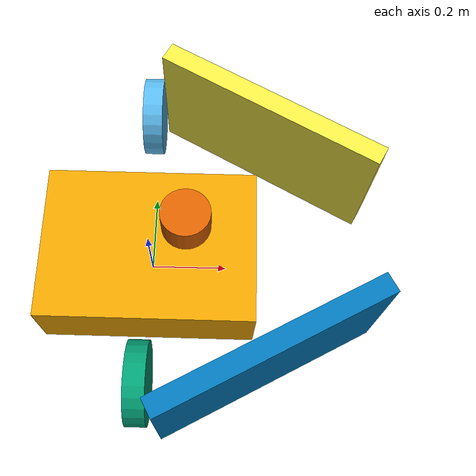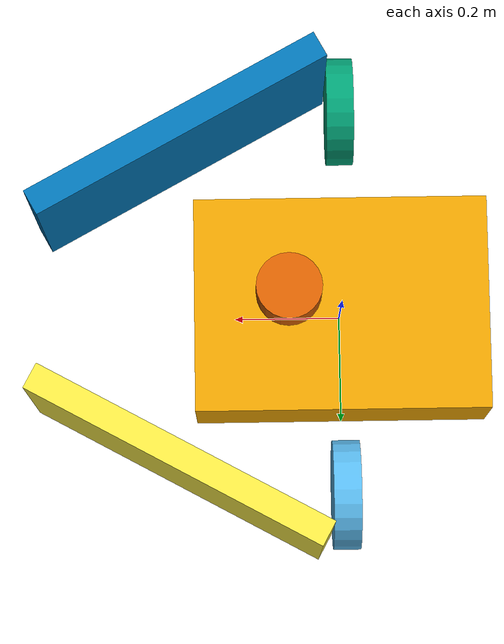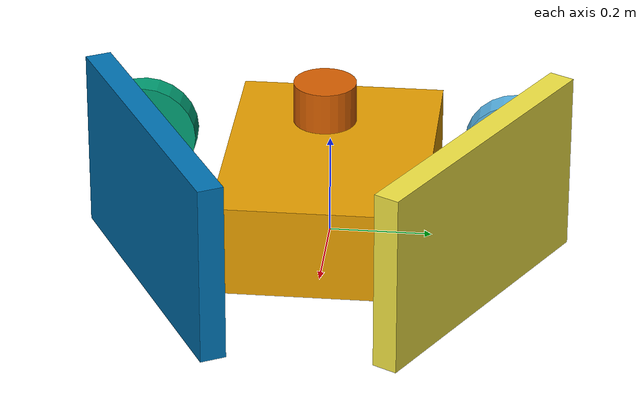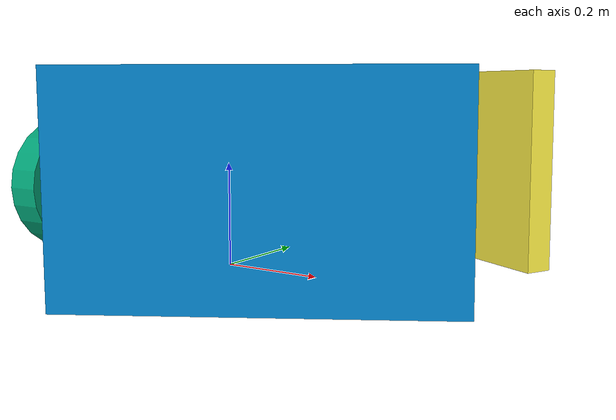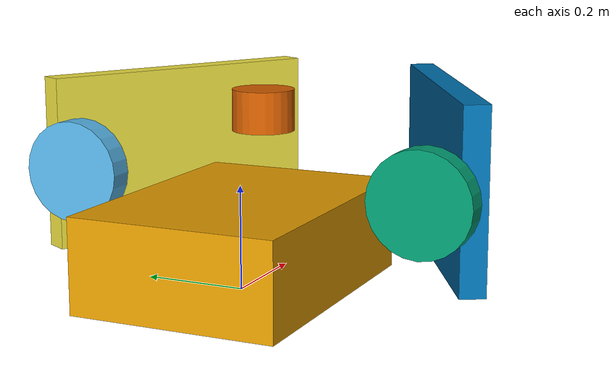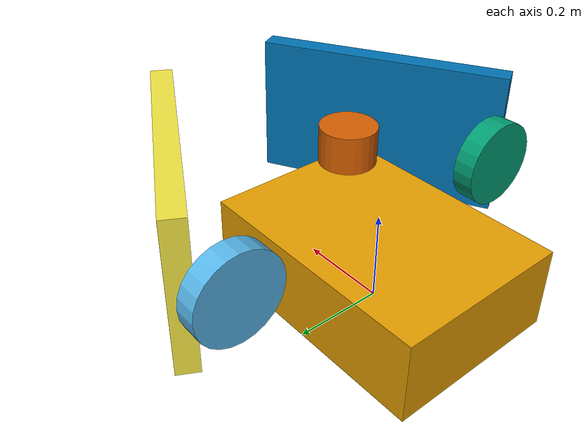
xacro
<?xml version="1.0"?>
<robot xmlns:xacro="http://www.ros.org/wiki/xacro" name="my_bot">

  <!-- ================= GLOBAL ================= -->
  <xacro:property name="base_length" value="0.55"/>
  <xacro:property name="base_width"  value="0.40"/>
  <xacro:property name="base_height" value="0.18"/>

  <xacro:property name="wheel_radius" value="0.10"/>
  <xacro:property name="wheel_width"  value="0.05"/>
  <xacro:property name="wheel_sep"    value="0.36"/>

  <xacro:property name="robot_mass" value="22.0"/>

  <!-- ================= INERTIA MACRO ================= -->
  <xacro:macro name="inertial_box" params="m x y z">
    <inertial>
      <mass value="${m}"/>
      <origin xyz="0 0 0"/>
      <inertia
        ixx="${m*(y*y+z*z)/12}"
        iyy="${m*(x*x+z*z)/12}"
        izz="${m*(x*x+y*y)/12}"
        ixy="0" ixz="0" iyz="0"/>
    </inertial>
  </xacro:macro>

  <!-- ================= BASE ================= -->
  <link name="base_link">
    <visual>
      <origin xyz="0 0 ${base_height/2}"/>
      <geometry>
        <box size="${base_length} ${base_width} ${base_height}"/>
      </geometry>
    </visual>
    <collision>
      <origin xyz="0 0 ${base_height/2}"/>
      <geometry>
        <box size="${base_length} ${base_width} ${base_height}"/>
      </geometry>
    </collision>
    <xacro:inertial_box m="${robot_mass}"
                        x="${base_length}"
                        y="${base_width}"
                        z="${base_height}"/>
  </link>

  <!-- ================= WHEELS ================= -->
  <link name="left_wheel">
    <visual>
      <origin xyz="0 ${wheel_sep/2} ${wheel_radius}" rpy="0 1.5708 0"/>
      <geometry>
        <cylinder radius="${wheel_radius}" length="${wheel_width}"/>
      </geometry>
    </visual>
    <collision>
      <origin xyz="0 ${wheel_sep/2} ${wheel_radius}"/>
      <geometry>
        <cylinder radius="${wheel_radius}" length="${wheel_width}"/>
      </geometry>
    </collision>
    <xacro:inertial_box m="2.0"
                        x="${wheel_width}"
                        y="${wheel_radius*2}"
                        z="${wheel_radius*2}"/>
  </link>

  <joint name="left_wheel_joint" type="continuous">
    <parent link="base_link"/>
    <child link="left_wheel"/>
    <origin xyz="0 ${wheel_sep/2} ${wheel_radius}"/>
    <axis xyz="0 1 0"/>
  </joint>

  <link name="right_wheel">
    <visual>
      <origin xyz="0 ${-wheel_sep/2} ${wheel_radius}" rpy="0 1.5708 0"/>
      <geometry>
        <cylinder radius="${wheel_radius}" length="${wheel_width}"/>
      </geometry>
    </visual>
    <collision>
      <origin xyz="0 ${-wheel_sep/2} ${wheel_radius}"/>
      <geometry>
        <cylinder radius="${wheel_radius}" length="${wheel_width}"/>
      </geometry>
    </collision>
    <xacro:inertial_box m="2.0"
                        x="${wheel_width}"
                        y="${wheel_radius*2}"
                        z="${wheel_radius*2}"/>
  </link>

  <joint name="right_wheel_joint" type="continuous">
    <parent link="base_link"/>
    <child link="right_wheel"/>
    <origin xyz="0 ${-wheel_sep/2} ${wheel_radius}"/>
    <axis xyz="0 1 0"/>
  </joint>

  <!-- ================= FIXED FLAPS (GUIDES) ================= -->

  <link name="left_flap">
    <visual>
      <origin xyz="0.30 0.30 0.20" rpy="0 0 -0.5"/>
      <geometry>
        <box size="0.60 0.05 0.35"/>
      </geometry>
    </visual>
    <collision>
      <origin xyz="0.30 0.30 0.20" rpy="0 0 -0.5"/>
      <geometry>
        <box size="0.60 0.05 0.35"/>
      </geometry>
    </collision>
    <xacro:inertial_box m="4.0" x="0.6" y="0.05" z="0.35"/>
  </link>

  <joint name="left_flap_joint" type="fixed">
    <parent link="base_link"/>
    <child link="left_flap"/>
    <origin xyz="0 0 0"/>
  </joint>

  <link name="right_flap">
    <visual>
      <origin xyz="0.30 -0.30 0.20" rpy="0 0 0.5"/>
      <geometry>
        <box size="0.60 0.05 0.35"/>
      </geometry>
    </visual>
    <collision>
      <origin xyz="0.30 -0.30 0.20" rpy="0 0 0.5"/>
      <geometry>
        <box size="0.60 0.05 0.35"/>
      </geometry>
    </collision>
    <xacro:inertial_box m="4.0" x="0.6" y="0.05" z="0.35"/>
  </link>

  <joint name="right_flap_joint" type="fixed">
    <parent link="base_link"/>
    <child link="right_flap"/>
    <origin xyz="0 0 0"/>
  </joint>

  <!-- ================= LIDAR SENSOR ================= -->
  <link name="lidar_link">
    <visual>
      <origin xyz="0.10 0 ${base_height + 0.15}"/>
      <geometry>
        <cylinder radius="0.06" length="0.08"/>
      </geometry>
    </visual>
    <collision>
      <origin xyz="0.10 0 ${base_height + 0.15}"/>
      <geometry>
        <cylinder radius="0.06" length="0.08"/>
      </geometry>
    </collision>
    <xacro:inertial_box m="0.3" x="0.08" y="0.08" z="0.08"/>
  </link>

  <joint name="lidar_joint" type="fixed">
    <parent link="base_link"/>
    <child link="lidar_link"/>
    <origin xyz="0 0 0"/>
  </joint>

  <!-- ================= DIFF DRIVE ================= -->
  <gazebo>
    <plugin filename="gz-sim-diff-drive-system"
            name="gz::sim::systems::DiffDrive">
      <left_joint>left_wheel_joint</left_joint>
      <right_joint>right_wheel_joint</right_joint>
      <wheel_separation>${wheel_sep}</wheel_separation>
      <wheel_radius>${wheel_radius}</wheel_radius>
      <topic>cmd_vel</topic>
      <odom_topic>odom</odom_topic>
      <frame_id>odom</frame_id>
      <child_frame_id>base_link</child_frame_id>
    </plugin>
  </gazebo>

</robot>
